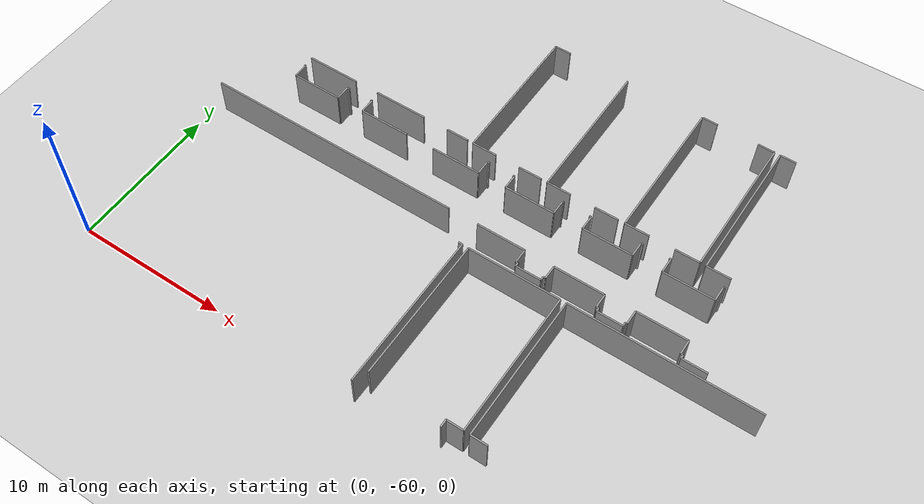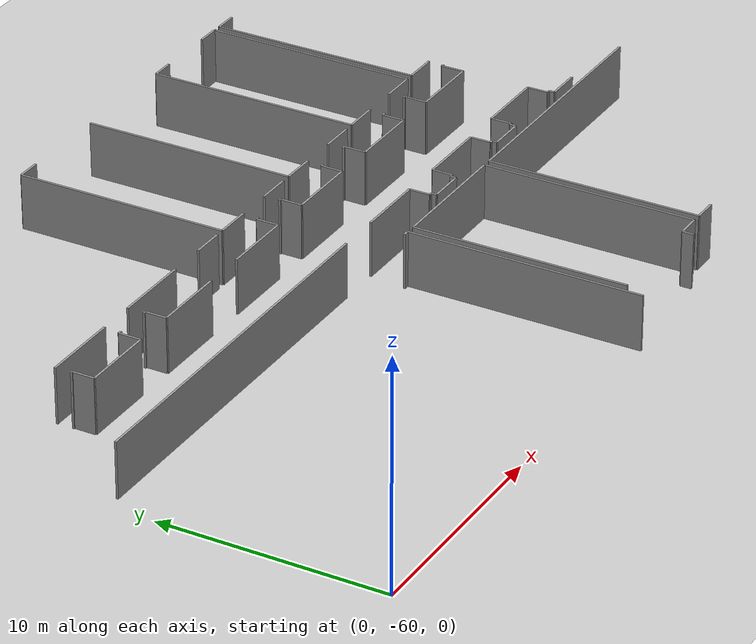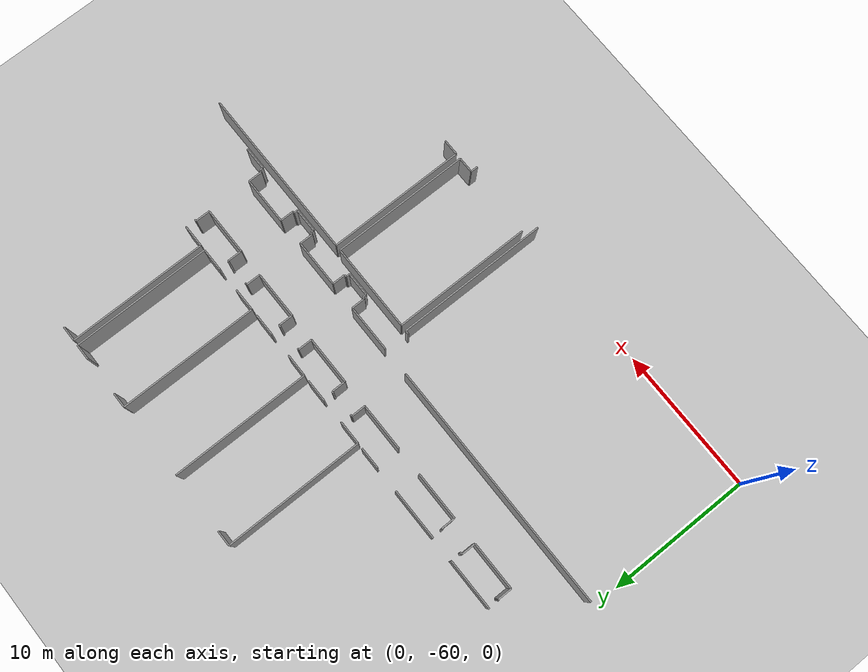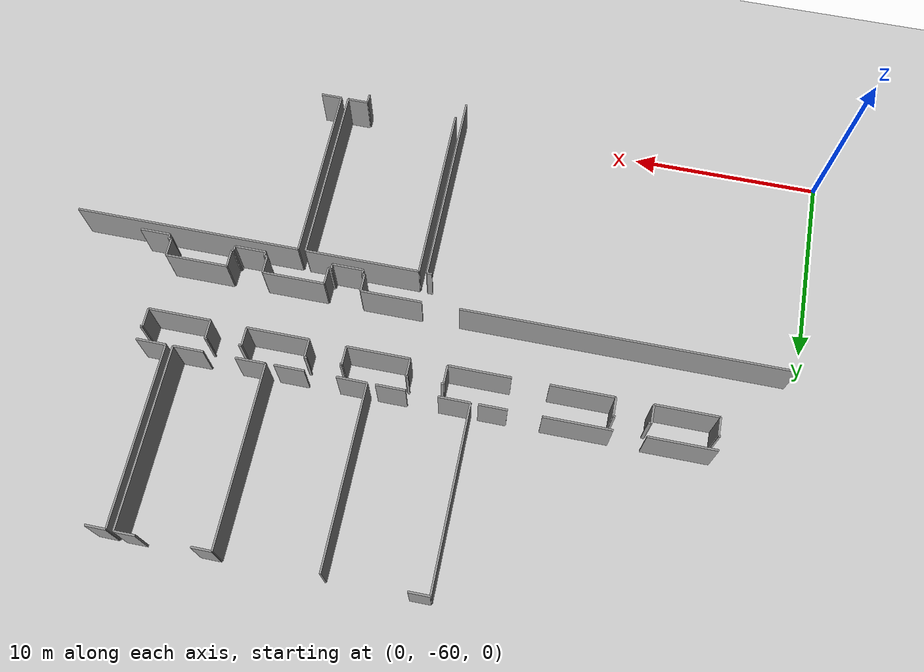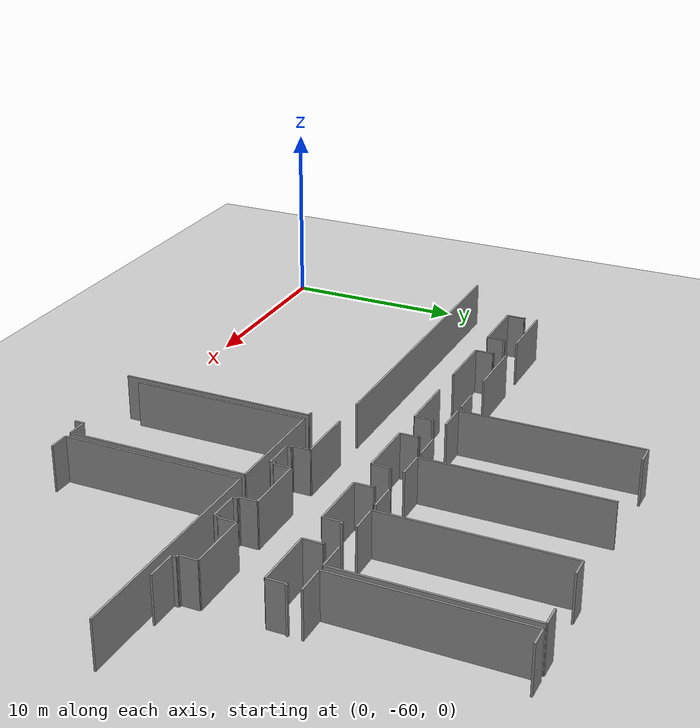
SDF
<sdf version="1.6">
 <world name="default">
  <model name="ground_plane">
   <static>1</static>
   <link name="link">
    <collision name="collision">
     <geometry><plane><normal>0 0 1</normal><size>100 100</size></plane></geometry>
     <surface><friction><ode><mu>100</mu><mu2>50</mu2></ode></friction></surface>
    </collision>
    <visual name="visual">
     <cast_shadows>0</cast_shadows>
     <geometry><plane><normal>0 0 1</normal><size>100 100</size></plane></geometry>
     <material>
      <script><uri>file://media/materials/scripts/gazebo.material</uri><name>Gazebo/Grey</name></script>
     </material>
    </visual>
   </link>
  </model>
  <model name="0510045925_40">
   <static>1</static>
   <link name="Wall_1572">
    <collision name="Wall_1572_Collision">
     <geometry><box><size>1.48219588335 0.1 2.5</size></box></geometry>
     <pose>0.741097941677 0 1.25 0 0 0</pose>
    </collision>
    <visual name="Wall_1572_Visual">
     <pose>0.741097941677 0 1.25 0 0 0</pose>
     <geometry><box><size>1.48219588335 0.1 2.5</size></box></geometry>
     <material>
      <script><uri>file://media/materials/scripts/gazebo.material</uri><name>Gazebo/Grey</name></script>
      <ambient>1 1 1 1</ambient>
     </material>
    </visual>
    <pose>149.890155072 -144.222659323 0 0 0 3.14159265359</pose>
   </link>
   <link name="Wall_1573">
    <collision name="Wall_1573_Collision">
     <geometry><box><size>3.53265145555 0.1 2.5</size></box></geometry>
     <pose>1.76632572777 0 1.25 0 0 0</pose>
    </collision>
    <visual name="Wall_1573_Visual">
     <pose>1.76632572777 0 1.25 0 0 0</pose>
     <geometry><box><size>3.53265145555 0.1 2.5</size></box></geometry>
     <material>
      <script><uri>file://media/materials/scripts/gazebo.material</uri><name>Gazebo/Grey</name></script>
      <ambient>1 1 1 1</ambient>
     </material>
    </visual>
    <pose>146.676784853 -144.222659323 0 0 0 3.14159265359</pose>
   </link>
   <link name="Wall_1574">
    <collision name="Wall_1574_Collision">
     <geometry><box><size>3.5293520469 0.1 2.5</size></box></geometry>
     <pose>1.76467602345 0 1.25 0 0 0</pose>
    </collision>
    <visual name="Wall_1574_Visual">
     <pose>1.76467602345 0 1.25 0 0 0</pose>
     <geometry><box><size>3.5293520469 0.1 2.5</size></box></geometry>
     <material>
      <script><uri>file://media/materials/scripts/gazebo.material</uri><name>Gazebo/Grey</name></script>
      <ambient>1 1 1 1</ambient>
     </material>
    </visual>
    <pose>141.483769447 -144.222659323 0 0 0 3.14159265359</pose>
   </link>
   <link name="Wall_1580">
    <collision name="Wall_1580_Collision">
     <geometry><box><size>0.0908606380549 0.1 2.5</size></box></geometry>
     <pose>0.0454303190274 0 1.25 0 0 0</pose>
    </collision>
    <visual name="Wall_1580_Visual">
     <pose>0.0454303190274 0 1.25 0 0 0</pose>
     <geometry><box><size>0.0908606380549 0.1 2.5</size></box></geometry>
     <material>
      <script><uri>file://media/materials/scripts/gazebo.material</uri><name>Gazebo/Grey</name></script>
      <ambient>1 1 1 1</ambient>
     </material>
    </visual>
    <pose>137.964823228 -144.953097637 0 0 0 0.0</pose>
   </link>
   <link name="Wall_1581">
    <collision name="Wall_1581_Collision">
     <geometry><box><size>0.981954772721 0.1 2.5</size></box></geometry>
     <pose>0.490977386361 0 1.25 0 0 0</pose>
    </collision>
    <visual name="Wall_1581_Visual">
     <pose>0.490977386361 0 1.25 0 0 0</pose>
     <geometry><box><size>0.981954772721 0.1 2.5</size></box></geometry>
     <material>
      <script><uri>file://media/materials/scripts/gazebo.material</uri><name>Gazebo/Grey</name></script>
      <ambient>1 1 1 1</ambient>
     </material>
    </visual>
    <pose>138.055683866 -144.953097637 0 0 0 -1.57079632679</pose>
   </link>
   <link name="Wall_1582">
    <collision name="Wall_1582_Collision">
     <geometry><box><size>3.30524605974 0.1 2.5</size></box></geometry>
     <pose>1.65262302987 0 1.25 0 0 0</pose>
    </collision>
    <visual name="Wall_1582_Visual">
     <pose>1.65262302987 0 1.25 0 0 0</pose>
     <geometry><box><size>3.30524605974 0.1 2.5</size></box></geometry>
     <material>
      <script><uri>file://media/materials/scripts/gazebo.material</uri><name>Gazebo/Grey</name></script>
      <ambient>1 1 1 1</ambient>
     </material>
    </visual>
    <pose>138.055683866 -145.93505241 0 0 0 0.0</pose>
   </link>
   <link name="Wall_1583">
    <collision name="Wall_1583_Collision">
     <geometry><box><size>0.986776985356 0.1 2.5</size></box></geometry>
     <pose>0.493388492678 0 1.25 0 0 0</pose>
    </collision>
    <visual name="Wall_1583_Visual">
     <pose>0.493388492678 0 1.25 0 0 0</pose>
     <geometry><box><size>0.986776985356 0.1 2.5</size></box></geometry>
     <material>
      <script><uri>file://media/materials/scripts/gazebo.material</uri><name>Gazebo/Grey</name></script>
      <ambient>1 1 1 1</ambient>
     </material>
    </visual>
    <pose>141.360929926 -145.93505241 0 0 0 1.57079632679</pose>
   </link>
   <link name="Wall_1584">
    <collision name="Wall_1584_Collision">
     <geometry><box><size>0.154564604959 0.1 2.5</size></box></geometry>
     <pose>0.0772823024796 0 1.25 0 0 0</pose>
    </collision>
    <visual name="Wall_1584_Visual">
     <pose>0.0772823024796 0 1.25 0 0 0</pose>
     <geometry><box><size>0.154564604959 0.1 2.5</size></box></geometry>
     <material>
      <script><uri>file://media/materials/scripts/gazebo.material</uri><name>Gazebo/Grey</name></script>
      <ambient>1 1 1 1</ambient>
     </material>
    </visual>
    <pose>141.360929926 -144.948275424 0 0 0 0.0</pose>
   </link>
   <link name="Wall_1585">
    <collision name="Wall_1585_Collision">
     <geometry><box><size>0.109134285932 0.1 2.5</size></box></geometry>
     <pose>0.0545671429659 0 1.25 0 0 0</pose>
    </collision>
    <visual name="Wall_1585_Visual">
     <pose>0.0545671429659 0 1.25 0 0 0</pose>
     <geometry><box><size>0.109134285932 0.1 2.5</size></box></geometry>
     <material>
      <script><uri>file://media/materials/scripts/gazebo.material</uri><name>Gazebo/Grey</name></script>
      <ambient>1 1 1 1</ambient>
     </material>
    </visual>
    <pose>143.147432806 -144.948275424 0 0 0 0.0</pose>
   </link>
   <link name="Wall_1586">
    <collision name="Wall_1586_Collision">
     <geometry><box><size>0.981954772722 0.1 2.5</size></box></geometry>
     <pose>0.490977386361 0 1.25 0 0 0</pose>
    </collision>
    <visual name="Wall_1586_Visual">
     <pose>0.490977386361 0 1.25 0 0 0</pose>
     <geometry><box><size>0.981954772722 0.1 2.5</size></box></geometry>
     <material>
      <script><uri>file://media/materials/scripts/gazebo.material</uri><name>Gazebo/Grey</name></script>
      <ambient>1 1 1 1</ambient>
     </material>
    </visual>
    <pose>143.256567092 -144.948275424 0 0 0 -1.57079632679</pose>
   </link>
   <link name="Wall_1587">
    <collision name="Wall_1587_Collision">
     <geometry><box><size>3.33316413289 0.1 2.5</size></box></geometry>
     <pose>1.66658206645 0 1.25 0 0 0</pose>
    </collision>
    <visual name="Wall_1587_Visual">
     <pose>1.66658206645 0 1.25 0 0 0</pose>
     <geometry><box><size>3.33316413289 0.1 2.5</size></box></geometry>
     <material>
      <script><uri>file://media/materials/scripts/gazebo.material</uri><name>Gazebo/Grey</name></script>
      <ambient>1 1 1 1</ambient>
     </material>
    </visual>
    <pose>143.256567092 -145.930230197 0 0 0 0.0</pose>
   </link>
   <link name="Wall_1588">
    <collision name="Wall_1588_Collision">
     <geometry><box><size>3.27199817264 0.1 2.5</size></box></geometry>
     <pose>1.63599908632 0 1.25 0 0 0</pose>
    </collision>
    <visual name="Wall_1588_Visual">
     <pose>1.63599908632 0 1.25 0 0 0</pose>
     <geometry><box><size>3.27199817264 0.1 2.5</size></box></geometry>
     <material>
      <script><uri>file://media/materials/scripts/gazebo.material</uri><name>Gazebo/Grey</name></script>
      <ambient>1 1 1 1</ambient>
     </material>
    </visual>
    <pose>148.515570671 -145.930230197 0 0 0 0.0</pose>
   </link>
   <link name="Wall_1589">
    <collision name="Wall_1589_Collision">
     <geometry><box><size>0.99159919799 0.1 2.5</size></box></geometry>
     <pose>0.495799598995 0 1.25 0 0 0</pose>
    </collision>
    <visual name="Wall_1589_Visual">
     <pose>0.495799598995 0 1.25 0 0 0</pose>
     <geometry><box><size>0.99159919799 0.1 2.5</size></box></geometry>
     <material>
      <script><uri>file://media/materials/scripts/gazebo.material</uri><name>Gazebo/Grey</name></script>
      <ambient>1 1 1 1</ambient>
     </material>
    </visual>
    <pose>151.787568843 -145.930230197 0 0 0 1.57079632679</pose>
   </link>
   <link name="Wall_1590">
    <collision name="Wall_1590_Collision">
     <geometry><box><size>0.138067561737 0.1 2.5</size></box></geometry>
     <pose>0.0690337808685 0 1.25 0 0 0</pose>
    </collision>
    <visual name="Wall_1590_Visual">
     <pose>0.0690337808685 0 1.25 0 0 0</pose>
     <geometry><box><size>0.138067561737 0.1 2.5</size></box></geometry>
     <material>
      <script><uri>file://media/materials/scripts/gazebo.material</uri><name>Gazebo/Grey</name></script>
      <ambient>1 1 1 1</ambient>
     </material>
    </visual>
    <pose>151.787568843 -144.938630999 0 0 0 0.0</pose>
   </link>
   <link name="Wall_1591">
    <collision name="Wall_1591_Collision">
     <geometry><box><size>0.114717900561 0.1 2.5</size></box></geometry>
     <pose>0.0573589502805 0 1.25 0 0 0</pose>
    </collision>
    <visual name="Wall_1591_Visual">
     <pose>0.0573589502805 0 1.25 0 0 0</pose>
     <geometry><box><size>0.114717900561 0.1 2.5</size></box></geometry>
     <material>
      <script><uri>file://media/materials/scripts/gazebo.material</uri><name>Gazebo/Grey</name></script>
      <ambient>1 1 1 1</ambient>
     </material>
    </visual>
    <pose>153.586254156 -144.938630999 0 0 0 0.0</pose>
   </link>
   <link name="Wall_1592">
    <collision name="Wall_1592_Collision">
     <geometry><box><size>0.977640161417 0.1 2.5</size></box></geometry>
     <pose>0.488820080709 0 1.25 0 0 0</pose>
    </collision>
    <visual name="Wall_1592_Visual">
     <pose>0.488820080709 0 1.25 0 0 0</pose>
     <geometry><box><size>0.977640161417 0.1 2.5</size></box></geometry>
     <material>
      <script><uri>file://media/materials/scripts/gazebo.material</uri><name>Gazebo/Grey</name></script>
      <ambient>1 1 1 1</ambient>
     </material>
    </visual>
    <pose>153.700972057 -144.938630999 0 0 0 -1.57079632679</pose>
   </link>
   <link name="Wall_1593">
    <collision name="Wall_1593_Collision">
     <geometry><box><size>3.30296185376 0.1 2.5</size></box></geometry>
     <pose>1.65148092688 0 1.25 0 0 0</pose>
    </collision>
    <visual name="Wall_1593_Visual">
     <pose>1.65148092688 0 1.25 0 0 0</pose>
     <geometry><box><size>3.30296185376 0.1 2.5</size></box></geometry>
     <material>
      <script><uri>file://media/materials/scripts/gazebo.material</uri><name>Gazebo/Grey</name></script>
      <ambient>1 1 1 1</ambient>
     </material>
    </visual>
    <pose>153.700972057 -145.916271161 0 0 0 0.0</pose>
   </link>
   <link name="Wall_1594">
    <collision name="Wall_1594_Collision">
     <geometry><box><size>0.979416766072 0.1 2.5</size></box></geometry>
     <pose>0.489708383036 0 1.25 0 0 0</pose>
    </collision>
    <visual name="Wall_1594_Visual">
     <pose>0.489708383036 0 1.25 0 0 0</pose>
     <geometry><box><size>0.979416766072 0.1 2.5</size></box></geometry>
     <material>
      <script><uri>file://media/materials/scripts/gazebo.material</uri><name>Gazebo/Grey</name></script>
      <ambient>1 1 1 1</ambient>
     </material>
    </visual>
    <pose>157.00393391 -145.916271161 0 0 0 1.57079632679</pose>
   </link>
   <link name="Wall_1595">
    <collision name="Wall_1595_Collision">
     <geometry><box><size>0.109895687927 0.1 2.5</size></box></geometry>
     <pose>0.0549478439633 0 1.25 0 0 0</pose>
    </collision>
    <visual name="Wall_1595_Visual">
     <pose>0.0549478439633 0 1.25 0 0 0</pose>
     <geometry><box><size>0.109895687927 0.1 2.5</size></box></geometry>
     <material>
      <script><uri>file://media/materials/scripts/gazebo.material</uri><name>Gazebo/Grey</name></script>
      <ambient>1 1 1 1</ambient>
     </material>
    </visual>
    <pose>157.00393391 -144.936854395 0 0 0 0.0</pose>
   </link>
   <link name="Wall_1596">
    <collision name="Wall_1596_Collision">
     <geometry><box><size>0.127915535139 0.1 2.5</size></box></geometry>
     <pose>0.0639577675693 0 1.25 0 0 0</pose>
    </collision>
    <visual name="Wall_1596_Visual">
     <pose>0.0639577675693 0 1.25 0 0 0</pose>
     <geometry><box><size>0.127915535139 0.1 2.5</size></box></geometry>
     <material>
      <script><uri>file://media/materials/scripts/gazebo.material</uri><name>Gazebo/Grey</name></script>
      <ambient>1 1 1 1</ambient>
     </material>
    </visual>
    <pose>158.813786452 -144.936854395 0 0 0 0.0</pose>
   </link>
   <link name="Wall_1597">
    <collision name="Wall_1597_Collision">
     <geometry><box><size>0.985761782696 0.1 2.5</size></box></geometry>
     <pose>0.492880891348 0 1.25 0 0 0</pose>
    </collision>
    <visual name="Wall_1597_Visual">
     <pose>0.492880891348 0 1.25 0 0 0</pose>
     <geometry><box><size>0.985761782696 0.1 2.5</size></box></geometry>
     <material>
      <script><uri>file://media/materials/scripts/gazebo.material</uri><name>Gazebo/Grey</name></script>
      <ambient>1 1 1 1</ambient>
     </material>
    </visual>
    <pose>158.941701987 -144.936854395 0 0 0 -1.57079632679</pose>
   </link>
   <link name="Wall_1598">
    <collision name="Wall_1598_Collision">
     <geometry><box><size>3.27453617928 0.1 2.5</size></box></geometry>
     <pose>1.63726808964 0 1.25 0 0 0</pose>
    </collision>
    <visual name="Wall_1598_Visual">
     <pose>1.63726808964 0 1.25 0 0 0</pose>
     <geometry><box><size>3.27453617928 0.1 2.5</size></box></geometry>
     <material>
      <script><uri>file://media/materials/scripts/gazebo.material</uri><name>Gazebo/Grey</name></script>
      <ambient>1 1 1 1</ambient>
     </material>
    </visual>
    <pose>158.941701987 -145.922616177 0 0 0 0.0</pose>
   </link>
   <link name="Wall_1599">
    <collision name="Wall_1599_Collision">
     <geometry><box><size>0.988807390675 0.1 2.5</size></box></geometry>
     <pose>0.494403695338 0 1.25 0 0 0</pose>
    </collision>
    <visual name="Wall_1599_Visual">
     <pose>0.494403695338 0 1.25 0 0 0</pose>
     <geometry><box><size>0.988807390675 0.1 2.5</size></box></geometry>
     <material>
      <script><uri>file://media/materials/scripts/gazebo.material</uri><name>Gazebo/Grey</name></script>
      <ambient>1 1 1 1</ambient>
     </material>
    </visual>
    <pose>162.216238167 -145.922616177 0 0 0 1.57079632679</pose>
   </link>
   <link name="Wall_1600">
    <collision name="Wall_1600_Collision">
     <geometry><box><size>0.153295601634 0.1 2.5</size></box></geometry>
     <pose>0.0766478008172 0 1.25 0 0 0</pose>
    </collision>
    <visual name="Wall_1600_Visual">
     <pose>0.0766478008172 0 1.25 0 0 0</pose>
     <geometry><box><size>0.153295601634 0.1 2.5</size></box></geometry>
     <material>
      <script><uri>file://media/materials/scripts/gazebo.material</uri><name>Gazebo/Grey</name></script>
      <ambient>1 1 1 1</ambient>
     </material>
    </visual>
    <pose>162.216238167 -144.933808787 0 0 0 0.0</pose>
   </link>
   <link name="Wall_1601">
    <collision name="Wall_1601_Collision">
     <geometry><box><size>0.107611481942 0.1 2.5</size></box></geometry>
     <pose>0.053805740971 0 1.25 0 0 0</pose>
    </collision>
    <visual name="Wall_1601_Visual">
     <pose>0.053805740971 0 1.25 0 0 0</pose>
     <geometry><box><size>0.107611481942 0.1 2.5</size></box></geometry>
     <material>
      <script><uri>file://media/materials/scripts/gazebo.material</uri><name>Gazebo/Grey</name></script>
      <ambient>1 1 1 1</ambient>
     </material>
    </visual>
    <pose>164.027613512 -144.933808787 0 0 0 0.0</pose>
   </link>
   <link name="Wall_1602">
    <collision name="Wall_1602_Collision">
     <geometry><box><size>1.01571026116 0.1 2.5</size></box></geometry>
     <pose>0.50785513058 0 1.25 0 0 0</pose>
    </collision>
    <visual name="Wall_1602_Visual">
     <pose>0.50785513058 0 1.25 0 0 0</pose>
     <geometry><box><size>1.01571026116 0.1 2.5</size></box></geometry>
     <material>
      <script><uri>file://media/materials/scripts/gazebo.material</uri><name>Gazebo/Grey</name></script>
      <ambient>1 1 1 1</ambient>
     </material>
    </visual>
    <pose>164.135224994 -144.933808787 0 0 0 -1.57079632679</pose>
   </link>
   <link name="Wall_1603">
    <collision name="Wall_1603_Collision">
     <geometry><box><size>3.29991624578 0.1 2.5</size></box></geometry>
     <pose>1.64995812289 0 1.25 0 0 0</pose>
    </collision>
    <visual name="Wall_1603_Visual">
     <pose>1.64995812289 0 1.25 0 0 0</pose>
     <geometry><box><size>3.29991624578 0.1 2.5</size></box></geometry>
     <material>
      <script><uri>file://media/materials/scripts/gazebo.material</uri><name>Gazebo/Grey</name></script>
      <ambient>1 1 1 1</ambient>
     </material>
    </visual>
    <pose>164.135224994 -145.949519048 0 0 0 0.0</pose>
   </link>
   <link name="Wall_1604">
    <collision name="Wall_1604_Collision">
     <geometry><box><size>1.0146950585 0.1 2.5</size></box></geometry>
     <pose>0.507347529251 0 1.25 0 0 0</pose>
    </collision>
    <visual name="Wall_1604_Visual">
     <pose>0.507347529251 0 1.25 0 0 0</pose>
     <geometry><box><size>1.0146950585 0.1 2.5</size></box></geometry>
     <material>
      <script><uri>file://media/materials/scripts/gazebo.material</uri><name>Gazebo/Grey</name></script>
      <ambient>1 1 1 1</ambient>
     </material>
    </visual>
    <pose>167.43514124 -145.949519048 0 0 0 1.57079632679</pose>
   </link>
   <link name="Wall_1605">
    <collision name="Wall_1605_Collision">
     <geometry><box><size>0.126392731149 0.1 2.5</size></box></geometry>
     <pose>0.0631963655745 0 1.25 0 0 0</pose>
    </collision>
    <visual name="Wall_1605_Visual">
     <pose>0.0631963655745 0 1.25 0 0 0</pose>
     <geometry><box><size>0.126392731149 0.1 2.5</size></box></geometry>
     <material>
      <script><uri>file://media/materials/scripts/gazebo.material</uri><name>Gazebo/Grey</name></script>
      <ambient>1 1 1 1</ambient>
     </material>
    </visual>
    <pose>167.43514124 -144.934823989 0 0 0 0.0</pose>
   </link>
   <link name="Wall_1635">
    <collision name="Wall_1635_Collision">
     <geometry><box><size>1.61290322581 0.1 2.5</size></box></geometry>
     <pose>0.806451612903 0 1.25 0 0 0</pose>
    </collision>
    <visual name="Wall_1635_Visual">
     <pose>0.806451612903 0 1.25 0 0 0</pose>
     <geometry><box><size>1.61290322581 0.1 2.5</size></box></geometry>
     <material>
      <script><uri>file://media/materials/scripts/gazebo.material</uri><name>Gazebo/Grey</name></script>
      <ambient>1 1 1 1</ambient>
     </material>
    </visual>
    <pose>169.221897921 -150.264891754 0 0 0 3.14159265359</pose>
   </link>
   <link name="Wall_1636">
    <collision name="Wall_1636_Collision">
     <geometry><box><size>0.243902439024 0.1 2.5</size></box></geometry>
     <pose>0.121951219512 0 1.25 0 0 0</pose>
    </collision>
    <visual name="Wall_1636_Visual">
     <pose>0.121951219512 0 1.25 0 0 0</pose>
     <geometry><box><size>0.243902439024 0.1 2.5</size></box></geometry>
     <material>
      <script><uri>file://media/materials/scripts/gazebo.material</uri><name>Gazebo/Grey</name></script>
      <ambient>1 1 1 1</ambient>
     </material>
    </visual>
    <pose>167.608994696 -150.264891754 0 0 0 1.57079632679</pose>
   </link>
   <link name="Wall_1637">
    <collision name="Wall_1637_Collision">
     <geometry><box><size>0.155579807619 0.1 2.5</size></box></geometry>
     <pose>0.0777899038095 0 1.25 0 0 0</pose>
    </collision>
    <visual name="Wall_1637_Visual">
     <pose>0.0777899038095 0 1.25 0 0 0</pose>
     <geometry><box><size>0.155579807619 0.1 2.5</size></box></geometry>
     <material>
      <script><uri>file://media/materials/scripts/gazebo.material</uri><name>Gazebo/Grey</name></script>
      <ambient>1 1 1 1</ambient>
     </material>
    </visual>
    <pose>167.608994696 -150.020989315 0 0 0 3.14159265359</pose>
   </link>
   <link name="Wall_1638">
    <collision name="Wall_1638_Collision">
     <geometry><box><size>0.955305702901 0.1 2.5</size></box></geometry>
     <pose>0.47765285145 0 1.25 0 0 0</pose>
    </collision>
    <visual name="Wall_1638_Visual">
     <pose>0.47765285145 0 1.25 0 0 0</pose>
     <geometry><box><size>0.955305702901 0.1 2.5</size></box></geometry>
     <material>
      <script><uri>file://media/materials/scripts/gazebo.material</uri><name>Gazebo/Grey</name></script>
      <ambient>1 1 1 1</ambient>
     </material>
    </visual>
    <pose>167.453414888 -150.020989315 0 0 0 1.57079632679</pose>
   </link>
   <link name="Wall_1639">
    <collision name="Wall_1639_Collision">
     <geometry><box><size>3.28595720921 0.1 2.5</size></box></geometry>
     <pose>1.6429786046 0 1.25 0 0 0</pose>
    </collision>
    <visual name="Wall_1639_Visual">
     <pose>1.6429786046 0 1.25 0 0 0</pose>
     <geometry><box><size>3.28595720921 0.1 2.5</size></box></geometry>
     <material>
      <script><uri>file://media/materials/scripts/gazebo.material</uri><name>Gazebo/Grey</name></script>
      <ambient>1 1 1 1</ambient>
     </material>
    </visual>
    <pose>167.453414888 -149.065683612 0 0 0 3.14159265359</pose>
   </link>
   <link name="Wall_1640">
    <collision name="Wall_1640_Collision">
     <geometry><box><size>0.938554859014 0.1 2.5</size></box></geometry>
     <pose>0.469277429507 0 1.25 0 0 0</pose>
    </collision>
    <visual name="Wall_1640_Visual">
     <pose>0.469277429507 0 1.25 0 0 0</pose>
     <geometry><box><size>0.938554859014 0.1 2.5</size></box></geometry>
     <material>
      <script><uri>file://media/materials/scripts/gazebo.material</uri><name>Gazebo/Grey</name></script>
      <ambient>1 1 1 1</ambient>
     </material>
    </visual>
    <pose>164.167457679 -149.065683612 0 0 0 -1.57079632679</pose>
   </link>
   <link name="Wall_1641">
    <collision name="Wall_1641_Collision">
     <geometry><box><size>0.112179893911 0.1 2.5</size></box></geometry>
     <pose>0.0560899469557 0 1.25 0 0 0</pose>
    </collision>
    <visual name="Wall_1641_Visual">
     <pose>0.0560899469557 0 1.25 0 0 0</pose>
     <geometry><box><size>0.112179893911 0.1 2.5</size></box></geometry>
     <material>
      <script><uri>file://media/materials/scripts/gazebo.material</uri><name>Gazebo/Grey</name></script>
      <ambient>1 1 1 1</ambient>
     </material>
    </visual>
    <pose>164.167457679 -150.004238471 0 0 0 3.14159265359</pose>
   </link>
   <link name="Wall_1642">
    <collision name="Wall_1642_Collision">
     <geometry><box><size>0.259891880917 0.1 2.5</size></box></geometry>
     <pose>0.129945940458 0 1.25 0 0 0</pose>
    </collision>
    <visual name="Wall_1642_Visual">
     <pose>0.129945940458 0 1.25 0 0 0</pose>
     <geometry><box><size>0.259891880917 0.1 2.5</size></box></geometry>
     <material>
      <script><uri>file://media/materials/scripts/gazebo.material</uri><name>Gazebo/Grey</name></script>
      <ambient>1 1 1 1</ambient>
     </material>
    </visual>
    <pose>164.055277785 -150.004238471 0 0 0 -1.57079632679</pose>
   </link>
   <link name="Wall_1643">
    <collision name="Wall_1643_Collision">
     <geometry><box><size>1.65604933885 0.1 2.5</size></box></geometry>
     <pose>0.828024669425 0 1.25 0 0 0</pose>
    </collision>
    <visual name="Wall_1643_Visual">
     <pose>0.828024669425 0 1.25 0 0 0</pose>
     <geometry><box><size>1.65604933885 0.1 2.5</size></box></geometry>
     <material>
      <script><uri>file://media/materials/scripts/gazebo.material</uri><name>Gazebo/Grey</name></script>
      <ambient>1 1 1 1</ambient>
     </material>
    </visual>
    <pose>164.055277785 -150.264130352 0 0 0 3.14159265359</pose>
   </link>
   <link name="Wall_1644">
    <collision name="Wall_1644_Collision">
     <geometry><box><size>0.24212583437 0.1 2.5</size></box></geometry>
     <pose>0.121062917185 0 1.25 0 0 0</pose>
    </collision>
    <visual name="Wall_1644_Visual">
     <pose>0.121062917185 0 1.25 0 0 0</pose>
     <geometry><box><size>0.24212583437 0.1 2.5</size></box></geometry>
     <material>
      <script><uri>file://media/materials/scripts/gazebo.material</uri><name>Gazebo/Grey</name></script>
      <ambient>1 1 1 1</ambient>
     </material>
    </visual>
    <pose>162.399228446 -150.264130352 0 0 0 1.57079632679</pose>
   </link>
   <link name="Wall_1645">
    <collision name="Wall_1645_Collision">
     <geometry><box><size>0.15101139565 0.1 2.5</size></box></geometry>
     <pose>0.075505697825 0 1.25 0 0 0</pose>
    </collision>
    <visual name="Wall_1645_Visual">
     <pose>0.075505697825 0 1.25 0 0 0</pose>
     <geometry><box><size>0.15101139565 0.1 2.5</size></box></geometry>
     <material>
      <script><uri>file://media/materials/scripts/gazebo.material</uri><name>Gazebo/Grey</name></script>
      <ambient>1 1 1 1</ambient>
     </material>
    </visual>
    <pose>162.399228446 -150.022004518 0 0 0 3.14159265359</pose>
   </link>
   <link name="Wall_1646">
    <collision name="Wall_1646_Collision">
     <geometry><box><size>0.927641430421 0.1 2.5</size></box></geometry>
     <pose>0.46382071521 0 1.25 0 0 0</pose>
    </collision>
    <visual name="Wall_1646_Visual">
     <pose>0.46382071521 0 1.25 0 0 0</pose>
     <geometry><box><size>0.927641430421 0.1 2.5</size></box></geometry>
     <material>
      <script><uri>file://media/materials/scripts/gazebo.material</uri><name>Gazebo/Grey</name></script>
      <ambient>1 1 1 1</ambient>
     </material>
    </visual>
    <pose>162.24821705 -150.022004518 0 0 0 1.57079632679</pose>
   </link>
   <link name="Wall_1647">
    <collision name="Wall_1647_Collision">
     <geometry><box><size>3.2968706378 0.1 2.5</size></box></geometry>
     <pose>1.6484353189 0 1.25 0 0 0</pose>
    </collision>
    <visual name="Wall_1647_Visual">
     <pose>1.6484353189 0 1.25 0 0 0</pose>
     <geometry><box><size>3.2968706378 0.1 2.5</size></box></geometry>
     <material>
      <script><uri>file://media/materials/scripts/gazebo.material</uri><name>Gazebo/Grey</name></script>
      <ambient>1 1 1 1</ambient>
     </material>
    </visual>
    <pose>162.24821705 -149.094363087 0 0 0 3.14159265359</pose>
   </link>
   <link name="Wall_1648">
    <collision name="Wall_1648_Collision">
     <geometry><box><size>0.913682393848 0.1 2.5</size></box></geometry>
     <pose>0.456841196924 0 1.25 0 0 0</pose>
    </collision>
    <visual name="Wall_1648_Visual">
     <pose>0.456841196924 0 1.25 0 0 0</pose>
     <geometry><box><size>0.913682393848 0.1 2.5</size></box></geometry>
     <material>
      <script><uri>file://media/materials/scripts/gazebo.material</uri><name>Gazebo/Grey</name></script>
      <ambient>1 1 1 1</ambient>
     </material>
    </visual>
    <pose>158.951346413 -149.094363087 0 0 0 -1.57079632679</pose>
   </link>
   <link name="Wall_1649">
    <collision name="Wall_1649_Collision">
     <geometry><box><size>0.147204385676 0.1 2.5</size></box></geometry>
     <pose>0.0736021928378 0 1.25 0 0 0</pose>
    </collision>
    <visual name="Wall_1649_Visual">
     <pose>0.0736021928378 0 1.25 0 0 0</pose>
     <geometry><box><size>0.147204385676 0.1 2.5</size></box></geometry>
     <material>
      <script><uri>file://media/materials/scripts/gazebo.material</uri><name>Gazebo/Grey</name></script>
      <ambient>1 1 1 1</ambient>
     </material>
    </visual>
    <pose>158.951346413 -150.008045481 0 0 0 3.14159265359</pose>
   </link>
   <link name="Wall_1650">
    <collision name="Wall_1650_Collision">
     <geometry><box><size>0.251008857643 0.1 2.5</size></box></geometry>
     <pose>0.125504428822 0 1.25 0 0 0</pose>
    </collision>
    <visual name="Wall_1650_Visual">
     <pose>0.125504428822 0 1.25 0 0 0</pose>
     <geometry><box><size>0.251008857643 0.1 2.5</size></box></geometry>
     <material>
      <script><uri>file://media/materials/scripts/gazebo.material</uri><name>Gazebo/Grey</name></script>
      <ambient>1 1 1 1</ambient>
     </material>
    </visual>
    <pose>158.804142027 -150.008045481 0 0 0 -1.57079632679</pose>
   </link>
   <link name="Wall_1651">
    <collision name="Wall_1651_Collision">
     <geometry><box><size>1.64995812289 0.1 2.5</size></box></geometry>
     <pose>0.824979061445 0 1.25 0 0 0</pose>
    </collision>
    <visual name="Wall_1651_Visual">
     <pose>0.824979061445 0 1.25 0 0 0</pose>
     <geometry><box><size>1.64995812289 0.1 2.5</size></box></geometry>
     <material>
      <script><uri>file://media/materials/scripts/gazebo.material</uri><name>Gazebo/Grey</name></script>
      <ambient>1 1 1 1</ambient>
     </material>
    </visual>
    <pose>158.804142027 -150.259054339 0 0 0 3.14159265359</pose>
   </link>
   <link name="Wall_1652">
    <collision name="Wall_1652_Collision">
     <geometry><box><size>0.246440445674 0.1 2.5</size></box></geometry>
     <pose>0.123220222837 0 1.25 0 0 0</pose>
    </collision>
    <visual name="Wall_1652_Visual">
     <pose>0.123220222837 0 1.25 0 0 0</pose>
     <geometry><box><size>0.246440445674 0.1 2.5</size></box></geometry>
     <material>
      <script><uri>file://media/materials/scripts/gazebo.material</uri><name>Gazebo/Grey</name></script>
      <ambient>1 1 1 1</ambient>
     </material>
    </visual>
    <pose>157.154183904 -150.259054339 0 0 0 1.57079632679</pose>
   </link>
   <link name="Wall_1653">
    <collision name="Wall_1653_Collision">
     <geometry><box><size>0.140097967057 0.1 2.5</size></box></geometry>
     <pose>0.0700489835284 0 1.25 0 0 0</pose>
    </collision>
    <visual name="Wall_1653_Visual">
     <pose>0.0700489835284 0 1.25 0 0 0</pose>
     <geometry><box><size>0.140097967057 0.1 2.5</size></box></geometry>
     <material>
      <script><uri>file://media/materials/scripts/gazebo.material</uri><name>Gazebo/Grey</name></script>
      <ambient>1 1 1 1</ambient>
     </material>
    </visual>
    <pose>157.154183904 -150.012613893 0 0 0 3.14159265359</pose>
   </link>
   <link name="Wall_1654">
    <collision name="Wall_1654_Collision">
     <geometry><box><size>0.940585264333 0.1 2.5</size></box></geometry>
     <pose>0.470292632167 0 1.25 0 0 0</pose>
    </collision>
    <visual name="Wall_1654_Visual">
     <pose>0.470292632167 0 1.25 0 0 0</pose>
     <geometry><box><size>0.940585264333 0.1 2.5</size></box></geometry>
     <material>
      <script><uri>file://media/materials/scripts/gazebo.material</uri><name>Gazebo/Grey</name></script>
      <ambient>1 1 1 1</ambient>
     </material>
    </visual>
    <pose>157.014085937 -150.012613893 0 0 0 1.57079632679</pose>
   </link>
   <link name="Wall_1655">
    <collision name="Wall_1655_Collision">
     <geometry><box><size>3.22834445826 0.1 2.5</size></box></geometry>
     <pose>1.61417222913 0 1.25 0 0 0</pose>
    </collision>
    <visual name="Wall_1655_Visual">
     <pose>1.61417222913 0 1.25 0 0 0</pose>
     <geometry><box><size>3.22834445826 0.1 2.5</size></box></geometry>
     <material>
      <script><uri>file://media/materials/scripts/gazebo.material</uri><name>Gazebo/Grey</name></script>
      <ambient>1 1 1 1</ambient>
     </material>
    </visual>
    <pose>157.014085937 -149.072028629 0 0 0 3.14159265359</pose>
   </link>
   <link name="Wall_1656">
    <collision name="Wall_1656_Collision">
     <geometry><box><size>17.2455013832 0.1 2.5</size></box></geometry>
     <pose>8.62275069161 0 1.25 0 0 0</pose>
    </collision>
    <visual name="Wall_1656_Visual">
     <pose>8.62275069161 0 1.25 0 0 0</pose>
     <geometry><box><size>17.2455013832 0.1 2.5</size></box></geometry>
     <material>
      <script><uri>file://media/materials/scripts/gazebo.material</uri><name>Gazebo/Grey</name></script>
      <ambient>1 1 1 1</ambient>
     </material>
    </visual>
    <pose>151.811426106 -149.072028629 0 0 0 3.14159265359</pose>
   </link>
   <link name="Wall_1666">
    <collision name="Wall_1666_Collision">
     <geometry><box><size>9.61066977995 0.1 2.5</size></box></geometry>
     <pose>4.80533488998 0 1.25 0 0 0</pose>
    </collision>
    <visual name="Wall_1666_Visual">
     <pose>4.80533488998 0 1.25 0 0 0</pose>
     <geometry><box><size>9.61066977995 0.1 2.5</size></box></geometry>
     <material>
      <script><uri>file://media/materials/scripts/gazebo.material</uri><name>Gazebo/Grey</name></script>
      <ambient>1 1 1 1</ambient>
     </material>
    </visual>
    <pose>150.278977691 -144.223420725 0 0 0 1.57079632679</pose>
   </link>
   <link name="Wall_1667">
    <collision name="Wall_1667_Collision">
     <geometry><box><size>1.07966802873 0.1 2.5</size></box></geometry>
     <pose>0.539834014365 0 1.25 0 0 0</pose>
    </collision>
    <visual name="Wall_1667_Visual">
     <pose>0.539834014365 0 1.25 0 0 0</pose>
     <geometry><box><size>1.07966802873 0.1 2.5</size></box></geometry>
     <material>
      <script><uri>file://media/materials/scripts/gazebo.material</uri><name>Gazebo/Grey</name></script>
      <ambient>1 1 1 1</ambient>
     </material>
    </visual>
    <pose>150.278977691 -134.612750945 0 0 0 0.0</pose>
   </link>
   <link name="Wall_1670">
    <collision name="Wall_1670_Collision">
     <geometry><box><size>1.55173726555 0.1 2.5</size></box></geometry>
     <pose>0.775868632776 0 1.25 0 0 0</pose>
    </collision>
    <visual name="Wall_1670_Visual">
     <pose>0.775868632776 0 1.25 0 0 0</pose>
     <geometry><box><size>1.55173726555 0.1 2.5</size></box></geometry>
     <material>
      <script><uri>file://media/materials/scripts/gazebo.material</uri><name>Gazebo/Grey</name></script>
      <ambient>1 1 1 1</ambient>
     </material>
    </visual>
    <pose>155.116418365 -144.223420725 0 0 0 3.14159265359</pose>
   </link>
   <link name="Wall_1671">
    <collision name="Wall_1671_Collision">
     <geometry><box><size>1.64995812289 0.1 2.5</size></box></geometry>
     <pose>0.824979061445 0 1.25 0 0 0</pose>
    </collision>
    <visual name="Wall_1671_Visual">
     <pose>0.824979061445 0 1.25 0 0 0</pose>
     <geometry><box><size>1.64995812289 0.1 2.5</size></box></geometry>
     <material>
      <script><uri>file://media/materials/scripts/gazebo.material</uri><name>Gazebo/Grey</name></script>
      <ambient>1 1 1 1</ambient>
     </material>
    </visual>
    <pose>151.928935814 -144.223420725 0 0 0 3.14159265359</pose>
   </link>
   <link name="Wall_1672">
    <collision name="Wall_1672_Collision">
     <geometry><box><size>9.61777619857 0.1 2.5</size></box></geometry>
     <pose>4.80888809929 0 1.25 0 0 0</pose>
    </collision>
    <visual name="Wall_1672_Visual">
     <pose>4.80888809929 0 1.25 0 0 0</pose>
     <geometry><box><size>9.61777619857 0.1 2.5</size></box></geometry>
     <material>
      <script><uri>file://media/materials/scripts/gazebo.material</uri><name>Gazebo/Grey</name></script>
      <ambient>1 1 1 1</ambient>
     </material>
    </visual>
    <pose>155.53442806 -144.225451131 0 0 0 1.57079632679</pose>
   </link>
   <link name="Wall_1676">
    <collision name="Wall_1676_Collision">
     <geometry><box><size>1.57229511941 0.1 2.5</size></box></geometry>
     <pose>0.786147559707 0 1.25 0 0 0</pose>
    </collision>
    <visual name="Wall_1676_Visual">
     <pose>0.786147559707 0 1.25 0 0 0</pose>
     <geometry><box><size>1.57229511941 0.1 2.5</size></box></geometry>
     <material>
      <script><uri>file://media/materials/scripts/gazebo.material</uri><name>Gazebo/Grey</name></script>
      <ambient>1 1 1 1</ambient>
     </material>
    </visual>
    <pose>160.338367047 -144.236364559 0 0 0 3.14159265359</pose>
   </link>
   <link name="Wall_1677">
    <collision name="Wall_1677_Collision">
     <geometry><box><size>1.58857584974 0.1 2.5</size></box></geometry>
     <pose>0.79428792487 0 1.25 0 0 0</pose>
    </collision>
    <visual name="Wall_1677_Visual">
     <pose>0.79428792487 0 1.25 0 0 0</pose>
     <geometry><box><size>1.58857584974 0.1 2.5</size></box></geometry>
     <material>
      <script><uri>file://media/materials/scripts/gazebo.material</uri><name>Gazebo/Grey</name></script>
      <ambient>1 1 1 1</ambient>
     </material>
    </visual>
    <pose>157.122966422 -144.236364559 0 0 0 3.13472265463</pose>
   </link>
   <link name="Wall_1678">
    <collision name="Wall_1678_Collision">
     <geometry><box><size>9.61650719525 0.1 2.5</size></box></geometry>
     <pose>4.80825359762 0 1.25 0 0 0</pose>
    </collision>
    <visual name="Wall_1678_Visual">
     <pose>4.80825359762 0 1.25 0 0 0</pose>
     <geometry><box><size>9.61650719525 0.1 2.5</size></box></geometry>
     <material>
      <script><uri>file://media/materials/scripts/gazebo.material</uri><name>Gazebo/Grey</name></script>
      <ambient>1 1 1 1</ambient>
     </material>
    </visual>
    <pose>160.766274968 -144.232049948 0 0 0 1.57079632679</pose>
   </link>
   <link name="Wall_1679">
    <collision name="Wall_1679_Collision">
     <geometry><box><size>1.04591254029 0.1 2.5</size></box></geometry>
     <pose>0.522956270145 0 1.25 0 0 0</pose>
    </collision>
    <visual name="Wall_1679_Visual">
     <pose>0.522956270145 0 1.25 0 0 0</pose>
     <geometry><box><size>1.04591254029 0.1 2.5</size></box></geometry>
     <material>
      <script><uri>file://media/materials/scripts/gazebo.material</uri><name>Gazebo/Grey</name></script>
      <ambient>1 1 1 1</ambient>
     </material>
    </visual>
    <pose>160.766274968 -134.615542753 0 0 0 0.0</pose>
   </link>
   <link name="Wall_1680">
    <collision name="Wall_1680_Collision">
     <geometry><box><size>1.08119083272 0.1 2.5</size></box></geometry>
     <pose>0.54059541636 0 1.25 0 0 0</pose>
    </collision>
    <visual name="Wall_1680_Visual">
     <pose>0.54059541636 0 1.25 0 0 0</pose>
     <geometry><box><size>1.08119083272 0.1 2.5</size></box></geometry>
     <material>
      <script><uri>file://media/materials/scripts/gazebo.material</uri><name>Gazebo/Grey</name></script>
      <ambient>1 1 1 1</ambient>
     </material>
    </visual>
    <pose>164.524809015 -134.615542753 0 0 0 0.0</pose>
   </link>
   <link name="Wall_1681">
    <collision name="Wall_1681_Collision">
     <geometry><box><size>9.60660896932 0.1 2.5</size></box></geometry>
     <pose>4.80330448466 0 1.25 0 0 0</pose>
    </collision>
    <visual name="Wall_1681_Visual">
     <pose>4.80330448466 0 1.25 0 0 0</pose>
     <geometry><box><size>9.60660896932 0.1 2.5</size></box></geometry>
     <material>
      <script><uri>file://media/materials/scripts/gazebo.material</uri><name>Gazebo/Grey</name></script>
      <ambient>1 1 1 1</ambient>
     </material>
    </visual>
    <pose>165.605999848 -134.615542753 0 0 0 -1.57079632679</pose>
   </link>
   <link name="Wall_1682">
    <collision name="Wall_1682_Collision">
     <geometry><box><size>1.59158396995 0.1 2.5</size></box></geometry>
     <pose>0.795791984975 0 1.25 0 0 0</pose>
    </collision>
    <visual name="Wall_1682_Visual">
     <pose>0.795791984975 0 1.25 0 0 0</pose>
     <geometry><box><size>1.59158396995 0.1 2.5</size></box></geometry>
     <material>
      <script><uri>file://media/materials/scripts/gazebo.material</uri><name>Gazebo/Grey</name></script>
      <ambient>1 1 1 1</ambient>
     </material>
    </visual>
    <pose>165.605999848 -144.222151722 0 0 0 3.14159265359</pose>
   </link>
   <link name="Wall_1683">
    <collision name="Wall_1683_Collision">
     <geometry><box><size>1.58552365099 0.1 2.5</size></box></geometry>
     <pose>0.792761825493 0 1.25 0 0 0</pose>
    </collision>
    <visual name="Wall_1683_Visual">
     <pose>0.792761825493 0 1.25 0 0 0</pose>
     <geometry><box><size>1.58552365099 0.1 2.5</size></box></geometry>
     <material>
      <script><uri>file://media/materials/scripts/gazebo.material</uri><name>Gazebo/Grey</name></script>
      <ambient>1 1 1 1</ambient>
     </material>
    </visual>
    <pose>162.351767722 -144.222151722 0 0 0 -3.13534973806</pose>
   </link>
   <link name="Wall_1684">
    <collision name="Wall_1684_Collision">
     <geometry><box><size>9.59239613208 0.1 2.5</size></box></geometry>
     <pose>4.79619806604 0 1.25 0 0 0</pose>
    </collision>
    <visual name="Wall_1684_Visual">
     <pose>4.79619806604 0 1.25 0 0 0</pose>
     <geometry><box><size>9.59239613208 0.1 2.5</size></box></geometry>
     <material>
      <script><uri>file://media/materials/scripts/gazebo.material</uri><name>Gazebo/Grey</name></script>
      <ambient>1 1 1 1</ambient>
     </material>
    </visual>
    <pose>165.984924241 -144.220628918 0 0 0 1.57079632679</pose>
   </link>
   <link name="Wall_1685">
    <collision name="Wall_1685_Collision">
     <geometry><box><size>1.05581076622 0.1 2.5</size></box></geometry>
     <pose>0.527905383112 0 1.25 0 0 0</pose>
    </collision>
    <visual name="Wall_1685_Visual">
     <pose>0.527905383112 0 1.25 0 0 0</pose>
     <geometry><box><size>1.05581076622 0.1 2.5</size></box></geometry>
     <material>
      <script><uri>file://media/materials/scripts/gazebo.material</uri><name>Gazebo/Grey</name></script>
      <ambient>1 1 1 1</ambient>
     </material>
    </visual>
    <pose>165.984924241 -134.628232786 0 0 0 0.0</pose>
   </link>
   <link name="Wall_1689">
    <collision name="Wall_1689_Collision">
     <geometry><box><size>1.56848942362 0.1 2.5</size></box></geometry>
     <pose>0.784244711808 0 1.25 0 0 0</pose>
    </collision>
    <visual name="Wall_1689_Visual">
     <pose>0.784244711808 0 1.25 0 0 0</pose>
     <geometry><box><size>1.56848942362 0.1 2.5</size></box></geometry>
     <material>
      <script><uri>file://media/materials/scripts/gazebo.material</uri><name>Gazebo/Grey</name></script>
      <ambient>1 1 1 1</ambient>
     </material>
    </visual>
    <pose>167.55341235 -144.222659323 0 0 0 3.14029815593</pose>
   </link>
   <link name="Wall_1703">
    <collision name="Wall_1703_Collision">
     <geometry><box><size>9.57818329484 0.1 2.5</size></box></geometry>
     <pose>4.78909164742 0 1.25 0 0 0</pose>
    </collision>
    <visual name="Wall_1703_Visual">
     <pose>4.78909164742 0 1.25 0 0 0</pose>
     <geometry><box><size>9.57818329484 0.1 2.5</size></box></geometry>
     <material>
      <script><uri>file://media/materials/scripts/gazebo.material</uri><name>Gazebo/Grey</name></script>
      <ambient>1 1 1 1</ambient>
     </material>
    </visual>
    <pose>160.767797772 -160.332910332 0 0 0 1.57079632679</pose>
   </link>
   <link name="Wall_1704">
    <collision name="Wall_1704_Collision">
     <geometry><box><size>12.0479175655 0.1 2.5</size></box></geometry>
     <pose>6.02395878277 0 1.25 0 0 0</pose>
    </collision>
    <visual name="Wall_1704_Visual">
     <pose>6.02395878277 0 1.25 0 0 0</pose>
     <geometry><box><size>12.0479175655 0.1 2.5</size></box></geometry>
     <material>
      <script><uri>file://media/materials/scripts/gazebo.material</uri><name>Gazebo/Grey</name></script>
      <ambient>1 1 1 1</ambient>
     </material>
    </visual>
    <pose>160.767797772 -150.754727037 0 0 0 0.0</pose>
   </link>
   <link name="Wall_1713">
    <collision name="Wall_1713_Collision">
     <geometry><box><size>1.10225815796 0.1 2.5</size></box></geometry>
     <pose>0.551129078979 0 1.25 0 0 0</pose>
    </collision>
    <visual name="Wall_1713_Visual">
     <pose>0.551129078979 0 1.25 0 0 0</pose>
     <geometry><box><size>1.10225815796 0.1 2.5</size></box></geometry>
     <material>
      <script><uri>file://media/materials/scripts/gazebo.material</uri><name>Gazebo/Grey</name></script>
      <ambient>1 1 1 1</ambient>
     </material>
    </visual>
    <pose>161.87005406 -160.334940738 0 0 0 3.139750611</pose>
   </link>
   <link name="Wall_1755">
    <collision name="Wall_1755_Collision">
     <geometry><box><size>0.2672521002 0.1 2.5</size></box></geometry>
     <pose>0.1336260501 0 1.25 0 0 0</pose>
    </collision>
    <visual name="Wall_1755_Visual">
     <pose>0.1336260501 0 1.25 0 0 0</pose>
     <geometry><box><size>0.2672521002 0.1 2.5</size></box></geometry>
     <material>
      <script><uri>file://media/materials/scripts/gazebo.material</uri><name>Gazebo/Grey</name></script>
      <ambient>1 1 1 1</ambient>
     </material>
    </visual>
    <pose>153.594375777 -150.735691988 0 0 0 0.0</pose>
   </link>
   <link name="Wall_1756">
    <collision name="Wall_1756_Collision">
     <geometry><box><size>10.5076013299 0.1 2.5</size></box></geometry>
     <pose>5.25380066496 0 1.25 0 0 0</pose>
    </collision>
    <visual name="Wall_1756_Visual">
     <pose>5.25380066496 0 1.25 0 0 0</pose>
     <geometry><box><size>10.5076013299 0.1 2.5</size></box></geometry>
     <material>
      <script><uri>file://media/materials/scripts/gazebo.material</uri><name>Gazebo/Grey</name></script>
      <ambient>1 1 1 1</ambient>
     </material>
    </visual>
    <pose>153.861627877 -150.735691988 0 0 0 -1.57079632679</pose>
   </link>
   <link name="Wall_1762">
    <collision name="Wall_1762_Collision">
     <geometry><box><size>9.59036572676 0.1 2.5</size></box></geometry>
     <pose>4.79518286338 0 1.25 0 0 0</pose>
    </collision>
    <visual name="Wall_1762_Visual">
     <pose>4.79518286338 0 1.25 0 0 0</pose>
     <geometry><box><size>9.59036572676 0.1 2.5</size></box></geometry>
     <material>
      <script><uri>file://media/materials/scripts/gazebo.material</uri><name>Gazebo/Grey</name></script>
      <ambient>1 1 1 1</ambient>
     </material>
    </visual>
    <pose>154.292581407 -160.340270552 0 0 0 1.57079632679</pose>
   </link>
   <link name="Wall_1763">
    <collision name="Wall_1763_Collision">
     <geometry><box><size>6.08004872973 0.1 2.5</size></box></geometry>
     <pose>3.04002436486 0 1.25 0 0 0</pose>
    </collision>
    <visual name="Wall_1763_Visual">
     <pose>3.04002436486 0 1.25 0 0 0</pose>
     <geometry><box><size>6.08004872973 0.1 2.5</size></box></geometry>
     <material>
      <script><uri>file://media/materials/scripts/gazebo.material</uri><name>Gazebo/Grey</name></script>
      <ambient>1 1 1 1</ambient>
     </material>
    </visual>
    <pose>154.292581407 -150.749904825 0 0 0 0.0</pose>
   </link>
   <link name="Wall_1764">
    <collision name="Wall_1764_Collision">
     <geometry><box><size>9.57336108221 0.1 2.5</size></box></geometry>
     <pose>4.7866805411 0 1.25 0 0 0</pose>
    </collision>
    <visual name="Wall_1764_Visual">
     <pose>4.7866805411 0 1.25 0 0 0</pose>
     <geometry><box><size>9.57336108221 0.1 2.5</size></box></geometry>
     <material>
      <script><uri>file://media/materials/scripts/gazebo.material</uri><name>Gazebo/Grey</name></script>
      <ambient>1 1 1 1</ambient>
     </material>
    </visual>
    <pose>160.372630136 -150.749904825 0 0 0 -1.57079632679</pose>
   </link>
   <link name="Wall_1765">
    <collision name="Wall_1765_Collision">
     <geometry><box><size>1.09819547727 0.1 2.5</size></box></geometry>
     <pose>0.549097738636 0 1.25 0 0 0</pose>
    </collision>
    <visual name="Wall_1765_Visual">
     <pose>0.549097738636 0 1.25 0 0 0</pose>
     <geometry><box><size>1.09819547727 0.1 2.5</size></box></geometry>
     <material>
      <script><uri>file://media/materials/scripts/gazebo.material</uri><name>Gazebo/Grey</name></script>
      <ambient>1 1 1 1</ambient>
     </material>
    </visual>
    <pose>160.372630136 -160.323265907 0 0 0 3.14159265359</pose>
   </link>
   <link name="Wall_1766">
    <collision name="Wall_1766_Collision">
     <geometry><box><size>0.505063323266 0.1 2.5</size></box></geometry>
     <pose>0.252531661633 0 1.25 0 0 0</pose>
    </collision>
    <visual name="Wall_1766_Visual">
     <pose>0.252531661633 0 1.25 0 0 0</pose>
     <geometry><box><size>0.505063323266 0.1 2.5</size></box></geometry>
     <material>
      <script><uri>file://media/materials/scripts/gazebo.material</uri><name>Gazebo/Grey</name></script>
      <ambient>1 1 1 1</ambient>
     </material>
    </visual>
    <pose>159.274434659 -160.323265907 0 0 0 -1.57079632679</pose>
   </link>
   <pose>-133.95 101.083118449 0 0 0 0</pose>
  </model>
 </world>
</sdf>
